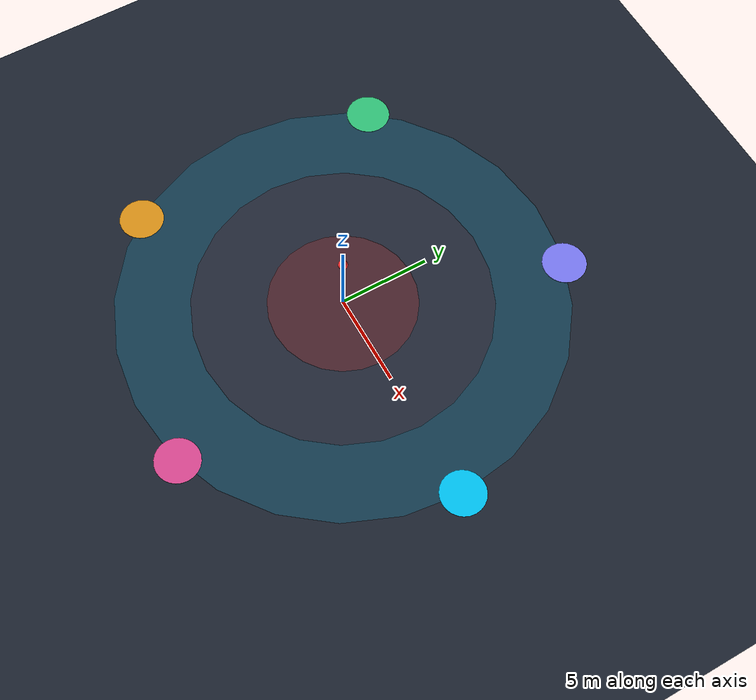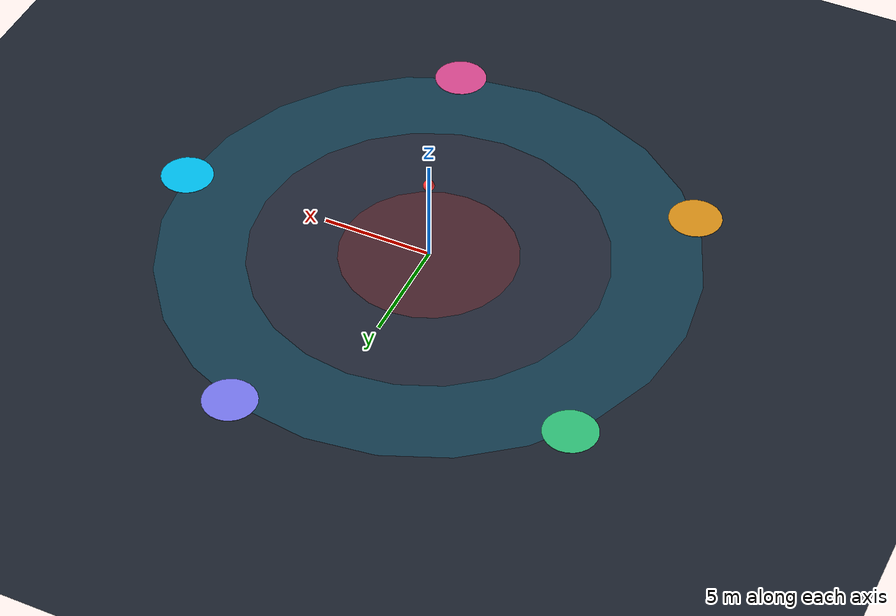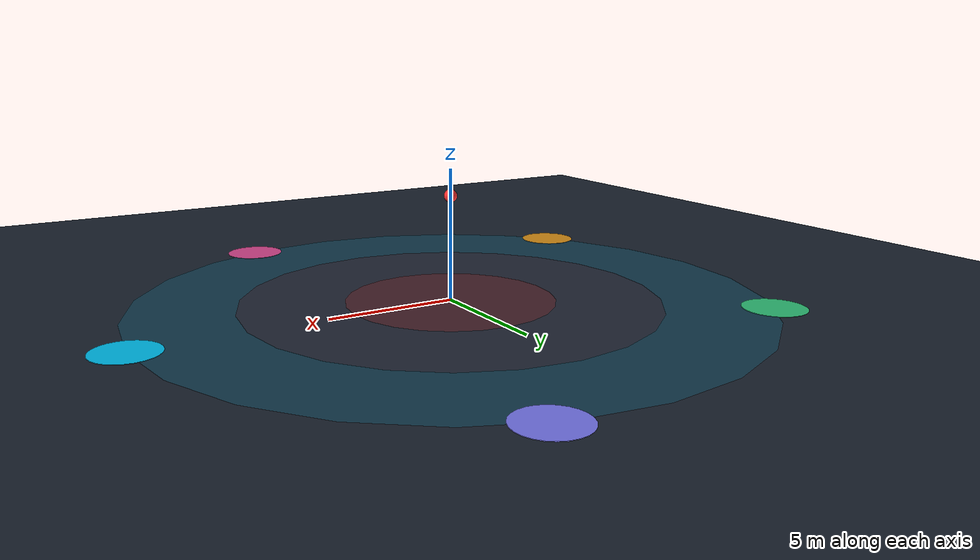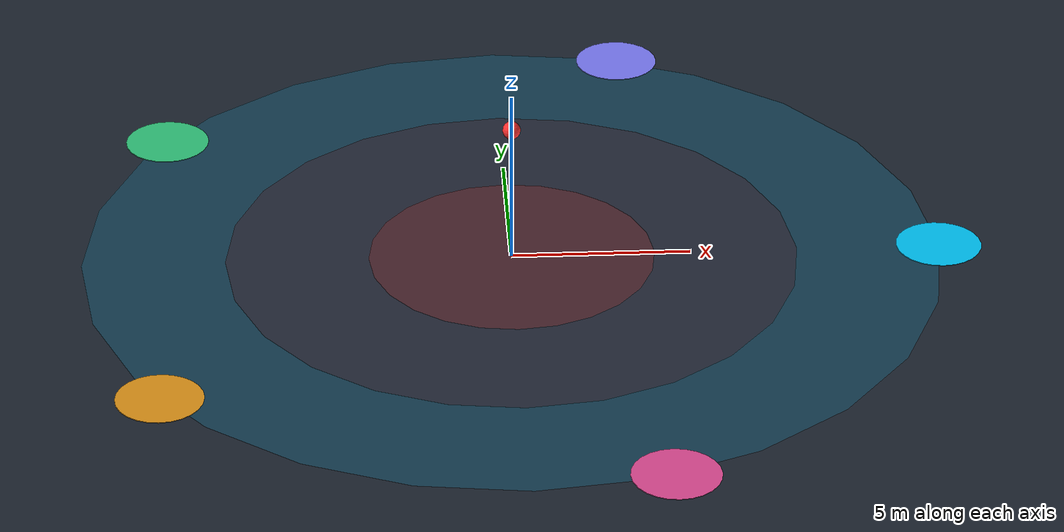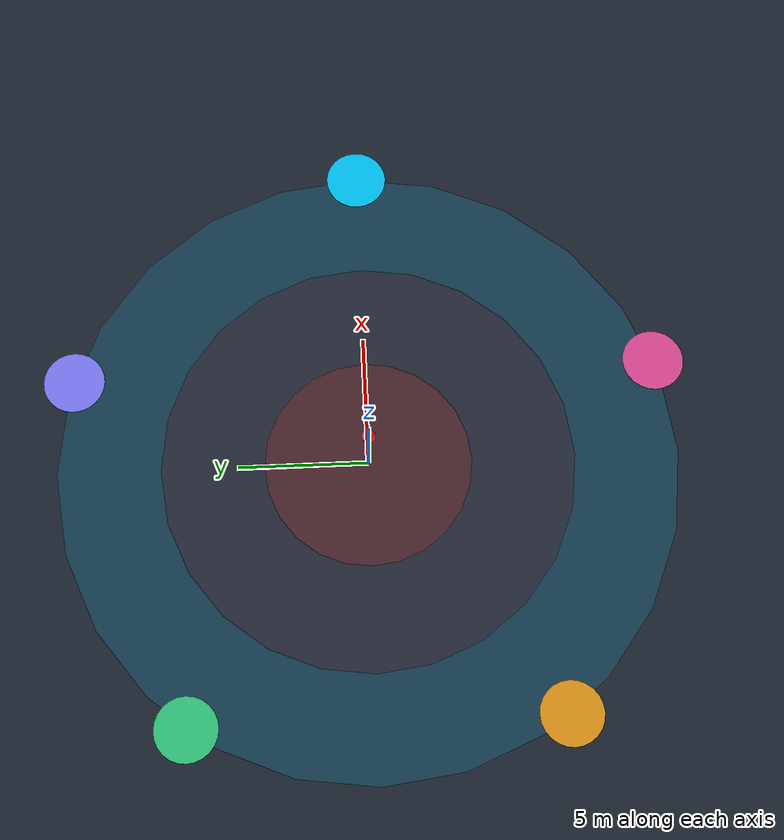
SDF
<sdf version="1.8">
 <world name="ring_crossing_arena">
  <physics name="500hz" type="dart">
   <max_step_size>0.002</max_step_size>
   <real_time_factor>1.0</real_time_factor>
   <real_time_update_rate>500</real_time_update_rate>
  </physics>
  <plugin filename="gz-sim-physics-system" name="gz::sim::systems::Physics"/>
  <plugin filename="gz-sim-user-commands-system" name="gz::sim::systems::UserCommands"/>
  <plugin filename="gz-sim-scene-broadcaster-system" name="gz::sim::systems::SceneBroadcaster"/>
  <plugin filename="gz-sim-sensors-system" name="gz::sim::systems::Sensors">
   <render_engine>ogre2</render_engine>
  </plugin>
  <plugin filename="gz-sim-imu-system" name="gz::sim::systems::Imu"/>
  <plugin filename="gz-sim-air-pressure-system" name="gz::sim::systems::AirPressure"/>
  <plugin filename="gz-sim-magnetometer-system" name="gz::sim::systems::Magnetometer"/>
  <plugin filename="gz-sim-navsat-system" name="gz::sim::systems::NavSat"/>
  <light name="sun" type="directional">
   <pose>0 0 50 0 0 0</pose>
   <diffuse>0.95 0.95 0.92 1</diffuse>
   <specular>0.3 0.3 0.3 1</specular>
   <direction>-0.3 0.3 -0.9</direction>
  </light>
  <model name="ground_plane">
   <static>true</static>
   <link name="link">
    <collision name="col"><geometry><plane><normal>0 0 1</normal><size>80 80</size></plane></geometry></collision>
    <visual name="vis">
     <geometry><plane><normal>0 0 1</normal><size>80 80</size></plane></geometry>
     <material>
      <ambient>0.08 0.10 0.15 1</ambient>
      <diffuse>0.12 0.15 0.20 1</diffuse>
      <specular>0.1 0.1 0.1 1</specular>
     </material>
    </visual>
   </link>
  </model>
  <model name="ring_perimeter_12m">
   <static>true</static>
   <pose>0 0 0.01 0 0 0</pose>
   <link name="link">
    <visual name="vis">
     <geometry><cylinder><radius>12.0</radius><length>0.01</length></cylinder></geometry>
     <material><ambient>0.0 0.5 0.8 0.15</ambient><diffuse>0.0 0.7 0.9 0.2</diffuse></material>
    </visual>
   </link>
  </model>
  <model name="ring_inner_8m">
   <static>true</static>
   <pose>0 0 0.015 0 0 0</pose>
   <link name="link">
    <visual name="vis">
     <geometry><cylinder><radius>8.0</radius><length>0.01</length></cylinder></geometry>
     <material><ambient>0.2 0.2 0.3 0.15</ambient><diffuse>0.3 0.3 0.4 0.2</diffuse></material>
    </visual>
   </link>
  </model>
  <model name="ring_inner_4m">
   <static>true</static>
   <pose>0 0 0.02 0 0 0</pose>
   <link name="link">
    <visual name="vis">
     <geometry><cylinder><radius>4.0</radius><length>0.01</length></cylinder></geometry>
     <material><ambient>0.8 0.2 0.2 0.2</ambient><diffuse>0.9 0.2 0.2 0.25</diffuse></material>
    </visual>
   </link>
  </model>
  <model name="central_crossing_target">
   <static>true</static>
   <pose>0 0 4.0 0 0 0</pose>
   <link name="link">
    <visual name="beacon">
     <geometry><sphere><radius>0.25</radius></sphere></geometry>
     <material>
      <ambient>1.0 0.1 0.1 1</ambient>
      <diffuse>1.0 0.2 0.2 1</diffuse>
      <emissive>0.8 0.1 0.1 1</emissive>
     </material>
    </visual>
   </link>
  </model>
  <model name="pad_alpha">
   <static>true</static>
   <pose>12.0 0.0 0.02 0 0 0</pose>
   <link name="link">
    <visual name="vis">
     <geometry><cylinder><radius>1.2</radius><length>0.02</length></cylinder></geometry>
     <material>
      <ambient>0.0 0.8 1.0 1</ambient>
      <diffuse>0.0 0.8 1.0 1</diffuse>
      <emissive>0.0 0.4 0.6 1</emissive>
     </material>
    </visual>
   </link>
  </model>
  <model name="pad_beta">
   <static>true</static>
   <pose>3.708 11.413 0.02 0 0 0</pose>
   <link name="link">
    <visual name="vis">
     <geometry><cylinder><radius>1.2</radius><length>0.02</length></cylinder></geometry>
     <material>
      <ambient>0.5 0.5 1.0 1</ambient>
      <diffuse>0.5 0.5 1.0 1</diffuse>
      <emissive>0.3 0.3 0.7 1</emissive>
     </material>
    </visual>
   </link>
  </model>
  <model name="pad_gamma">
   <static>true</static>
   <pose>-9.708 7.053 0.02 0 0 0</pose>
   <link name="link">
    <visual name="vis">
     <geometry><cylinder><radius>1.2</radius><length>0.02</length></cylinder></geometry>
     <material>
      <ambient>0.2 0.8 0.5 1</ambient>
      <diffuse>0.2 0.8 0.5 1</diffuse>
      <emissive>0.1 0.5 0.3 1</emissive>
     </material>
    </visual>
   </link>
  </model>
  <model name="pad_delta">
   <static>true</static>
   <pose>-9.708 -7.053 0.02 0 0 0</pose>
   <link name="link">
    <visual name="vis">
     <geometry><cylinder><radius>1.2</radius><length>0.02</length></cylinder></geometry>
     <material>
      <ambient>0.9 0.6 0.1 1</ambient>
      <diffuse>0.9 0.6 0.1 1</diffuse>
      <emissive>0.6 0.4 0.1 1</emissive>
     </material>
    </visual>
   </link>
  </model>
  <model name="pad_epsilon">
   <static>true</static>
   <pose>3.708 -11.413 0.02 0 0 0</pose>
   <link name="link">
    <visual name="vis">
     <geometry><cylinder><radius>1.2</radius><length>0.02</length></cylinder></geometry>
     <material>
      <ambient>0.9 0.3 0.6 1</ambient>
      <diffuse>0.9 0.3 0.6 1</diffuse>
      <emissive>0.6 0.2 0.4 1</emissive>
     </material>
    </visual>
   </link>
  </model>
 </world>
</sdf>
